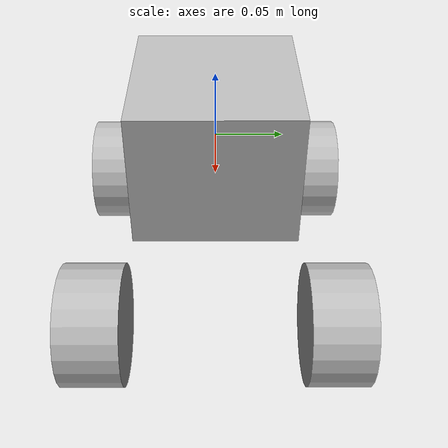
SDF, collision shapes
<?xml version="1.0"?>
<sdf version="1.7">
  <model name="limo_static">
    <static>true</static>

    <link name="base_link">
      <inertial>
        <mass>2.2</mass>
        <inertia>
          <ixx>0.24</ixx>
          <iyy>0.96</iyy>
          <izz>0.96</izz>
          <ixy>0</ixy>
          <ixz>0</ixz>
          <iyz>0</iyz>
        </inertia>
      </inertial>
      <visual name="base_visual">
        <pose>0 0 -0.15 0 0 1.5708</pose>
        <geometry>
          <mesh>
            <uri>model://limo_static/meshes/limo_base.dae</uri>
          </mesh>
        </geometry>
      </visual>
      <collision name="base_collision">
        <geometry>
          <box>
            <size>0.13 0.12 0.1</size>
          </box>
        </geometry>
      </collision>
    </link>

    <link name="front_left_wheel_link">
      <pose>0.1 0.065 -0.10 0 0 0</pose>
      <visual name="wheel_visual">
        <geometry>
          <mesh>
            <uri>model://limo_static/meshes/limo_wheel.dae</uri>
          </mesh>
        </geometry>
      </visual>
      <collision name="wheel_collision">
        <pose>0 0.0225 0 1.5708 0 0</pose>
        <geometry>
          <cylinder>
            <radius>0.045</radius>
            <length>0.045</length>
          </cylinder>
        </geometry>
      </collision>
    </link>

    <link name="front_right_wheel_link">
      <pose>0.1 -0.065 -0.10 3.14159 0 0</pose>
      <visual name="wheel_visual">
        <geometry>
          <mesh>
            <uri>model://limo_static/meshes/limo_wheel.dae</uri>
          </mesh>
        </geometry>
      </visual>
      <collision name="wheel_collision">
        <pose>0 0.0225 0 1.5708 0 0</pose>
        <geometry>
          <cylinder>
            <radius>0.045</radius>
            <length>0.045</length>
          </cylinder>
        </geometry>
      </collision>
    </link>

    <link name="rear_left_wheel_link">
      <pose>-0.1 0.065 -0.10 0 0 0</pose>
      <visual name="wheel_visual">
        <geometry>
          <mesh>
            <uri>model://limo_static/meshes/limo_wheel.dae</uri>
          </mesh>
        </geometry>
      </visual>
      <collision name="wheel_collision">
        <pose>0 0.0225 0 1.5708 0 0</pose>
        <geometry>
          <cylinder>
            <radius>0.045</radius>
            <length>0.045</length>
          </cylinder>
        </geometry>
      </collision>
    </link>

    <link name="rear_right_wheel_link">
      <pose>-0.1 -0.065 -0.10 3.14159 0 0</pose>
      <visual name="wheel_visual">
        <geometry>
          <mesh>
            <uri>model://limo_static/meshes/limo_wheel.dae</uri>
          </mesh>
        </geometry>
      </visual>
      <collision name="wheel_collision">
        <pose>0 0.0225 0 1.5708 0 0</pose>
        <geometry>
          <cylinder>
            <radius>0.045</radius>
            <length>0.045</length>
          </cylinder>
        </geometry>
      </collision>
    </link>

    <joint name="front_left_wheel_joint" type="fixed">
      <parent>base_link</parent>
      <child>front_left_wheel_link</child>
    </joint>

    <joint name="front_right_wheel_joint" type="fixed">
      <parent>base_link</parent>
      <child>front_right_wheel_link</child>
    </joint>

    <joint name="rear_left_wheel_joint" type="fixed">
      <parent>base_link</parent>
      <child>rear_left_wheel_link</child>
    </joint>

    <joint name="rear_right_wheel_joint" type="fixed">
      <parent>base_link</parent>
      <child>rear_right_wheel_link</child>
    </joint>
  </model>
</sdf>
